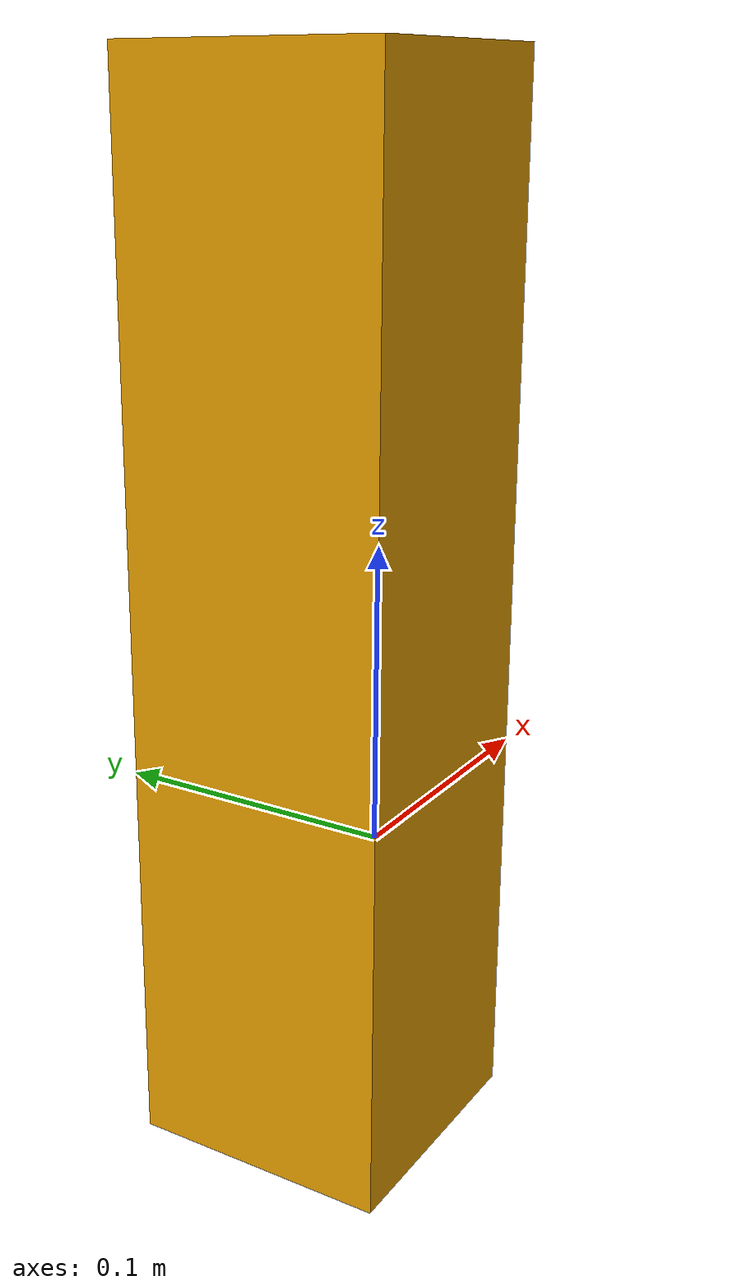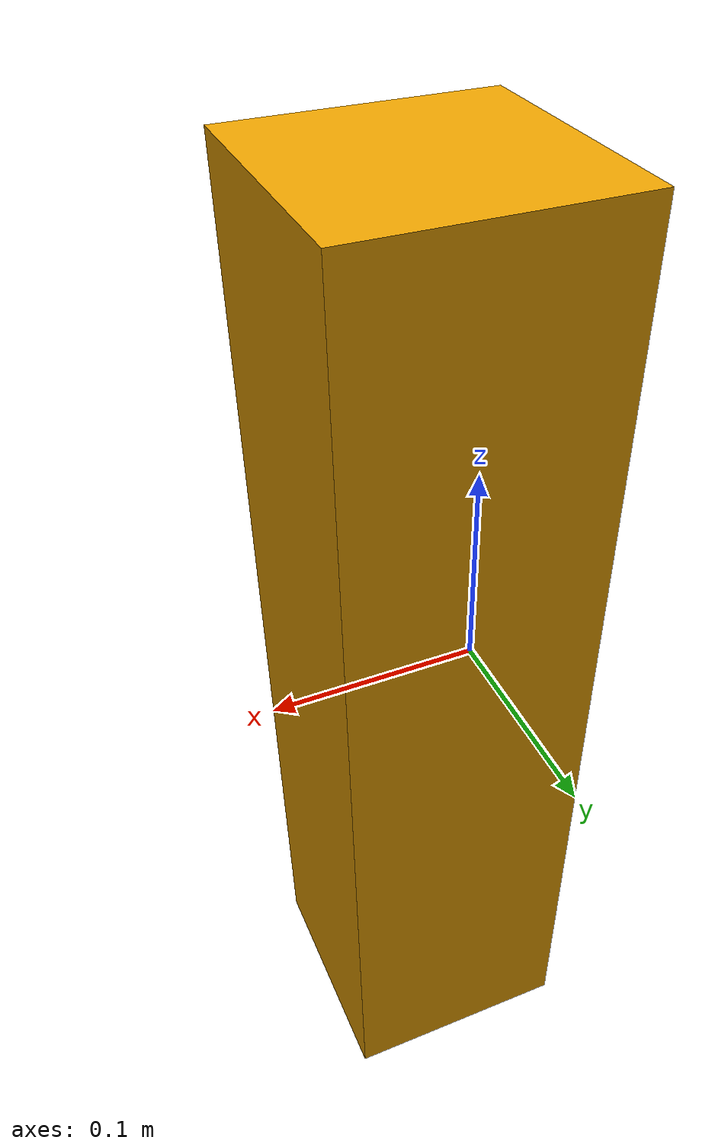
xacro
<?xml version="1.0"?>
<robot xmlns:xacro="http://www.ros.org/wiki/xacro">
  <xacro:property name="box_origin">
	<origin xyz="0.05 0.05 0.05" />
  </xacro:property>

  <xacro:macro name="box_inertial" params="x y z mass">
    <inertial>
      <mass value="${mass}" />
      <xacro:insert_block name="box_origin" />
      <inertia ixx="${0.0833333 * mass * (y*y + z*z)}" ixy="0.0" ixz="0.0"
        iyy="${0.0833333 * mass * (x*x + z*z)}" iyz="0.0"
        izz="${0.0833333 * mass * (x*x + y*y)}" />
    </inertial>
  </xacro:macro>

  <link name="marker0">
    <xacro:box_inertial x="0.1" y="0.1" z="0.1" mass="1.0" />
    <visual>
      <xacro:insert_block name="box_origin" />
      <geometry>
        <box size="0.1 0.1 0.4" />
      </geometry>
    </visual>
    <collision>
      <xacro:insert_block name="box_origin" />
      <geometry>
        <box size="0.1 0.1 0.4" />
      </geometry>
    </collision>
  </link>
  <gazebo reference="collision_object">
    <material>Gazebo/Blue</material>
  </gazebo>
</robot>
